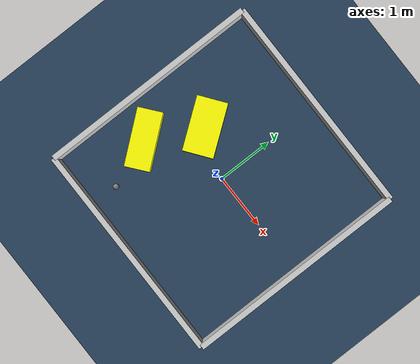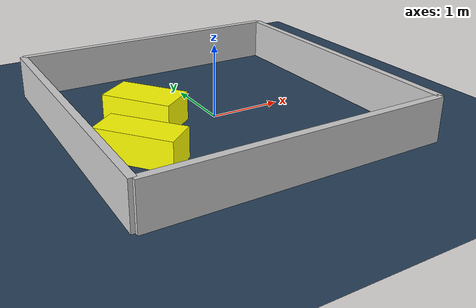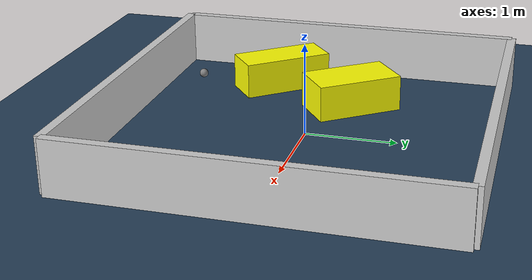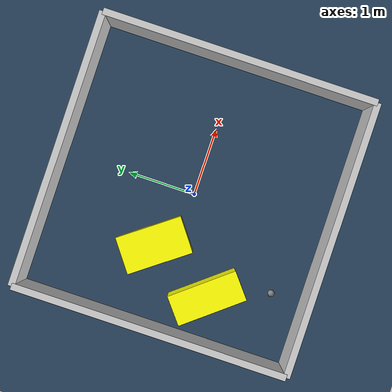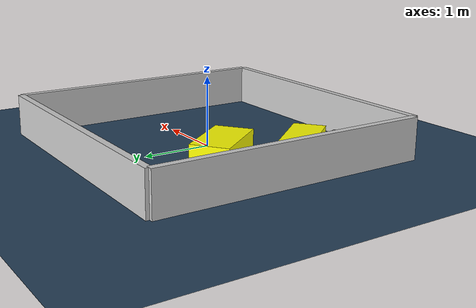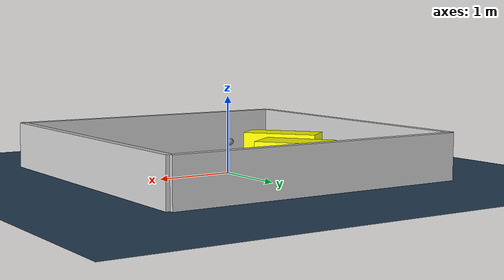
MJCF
<?xml version="1.0" ?>
<mujoco model="generated_environment">
  <option timestep="0.01" integrator="RK4" cone="elliptic"/>
  <default>
    <geom density="1"/>
  </default>
  <asset>
    <texture builtin="gradient" height="3072" rgb1="0.3 0.5 0.7" rgb2="0 0 0" type="skybox" width="512"/>
    <texture builtin="checker" height="300" mark="edge" markrgb="0.8 0.8 0.8" name="groundplane" rgb1="0.2 0.3 0.4" rgb2="0.1 0.2 0.3" type="2d" width="300"/>
    <material name="groundplane" reflectance="0.2" texrepeat="5 5" texture="groundplane" texuniform="true"/>
    <material name="robot" rgba="0.0 1.0 0.0 1"/>
  </asset>
  <worldbody>
    <light dir="0 0 -1" directional="true" pos="0 0 1.5"/>
    <geom condim="4" friction="1.0 0.005 0.001" material="groundplane" name="floor" size="0 0 0.05" type="plane"/>
    <body name="walls">
      <geom name="wall_1" condim="4" pos="-2.0 0.0 0.3" rgba="0.800000011920929 0.800000011920929 0.800000011920929 1.0" size="0.05 2.0 0.3" type="box"/>
      <geom name="wall_2" condim="4" pos="2.0 0.0 0.3" rgba="0.800000011920929 0.800000011920929 0.800000011920929 1.0" size="0.05 2.0 0.3" type="box"/>
      <geom name="wall_3" condim="4" pos="0.0 -2.0 0.3" rgba="0.800000011920929 0.800000011920929 0.800000011920929 1.0" size="2.0 0.05 0.3" type="box"/>
      <geom name="wall_4" condim="4" pos="0.0 2.0 0.3" rgba="0.800000011920929 0.800000011920929 0.800000011920929 1.0" size="2.0 0.05 0.3" type="box"/>
    </body>
    <body name="robot">
      <joint name="joint_x" type="slide" pos="0 0 0" axis="1 0 0"/>
      <joint name="joint_y" type="slide" pos="0 0 0" axis="0 1 0"/>
      <geom name="robot" type="sphere" pos="-1.000854276573197 -1.4929130674400526 0.2" size="0.05" mass="5." friction="1.0 0.005 0.0001" condim="4"/>
      <site name="sensor_ball"/>
    </body>
    <body name="obstacle_1_movable">
      <geom name="obstacle_1_movable" condim="4" pos="-0.8618130027306894 0.31549528477597977 0.2" euler="0 0 126.7477065667133" friction="1.0 0.005 0.001" rgba="1 1 0 1" size="0.4850314434587356 0.27227680089454137 0.2" type="box" mass="0.1"/>
      <joint type="free"/>
    </body>
    <body name="obstacle_2_movable">
      <geom name="obstacle_2_movable" condim="4" pos="-1.335541716786397 -0.6293240216976682 0.2" euler="0 0 38.977112107371255" friction="1.0 0.005 0.001" rgba="1 1 0 1" size="0.2223189143091974 0.5149821135854233 0.2" type="box" mass="0.1"/>
      <joint type="free"/>
    </body>
  </worldbody>
  <actuator>
    <motor name="actuator_x" joint="joint_x" gear="1" ctrlrange="-1 1"/>
    <motor name="actuator_y" joint="joint_y" gear="1" ctrlrange="-1 1"/>
  </actuator>
</mujoco>
